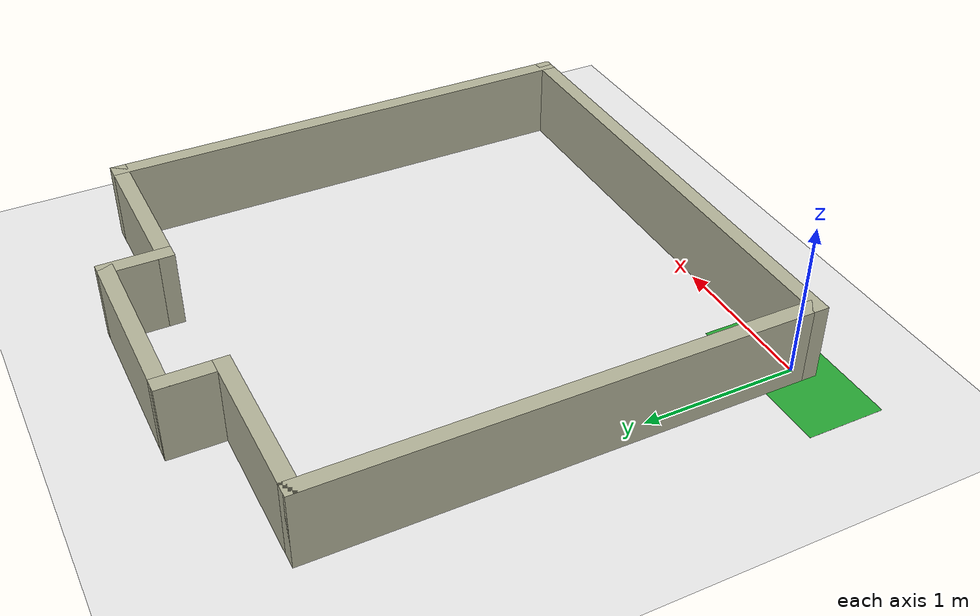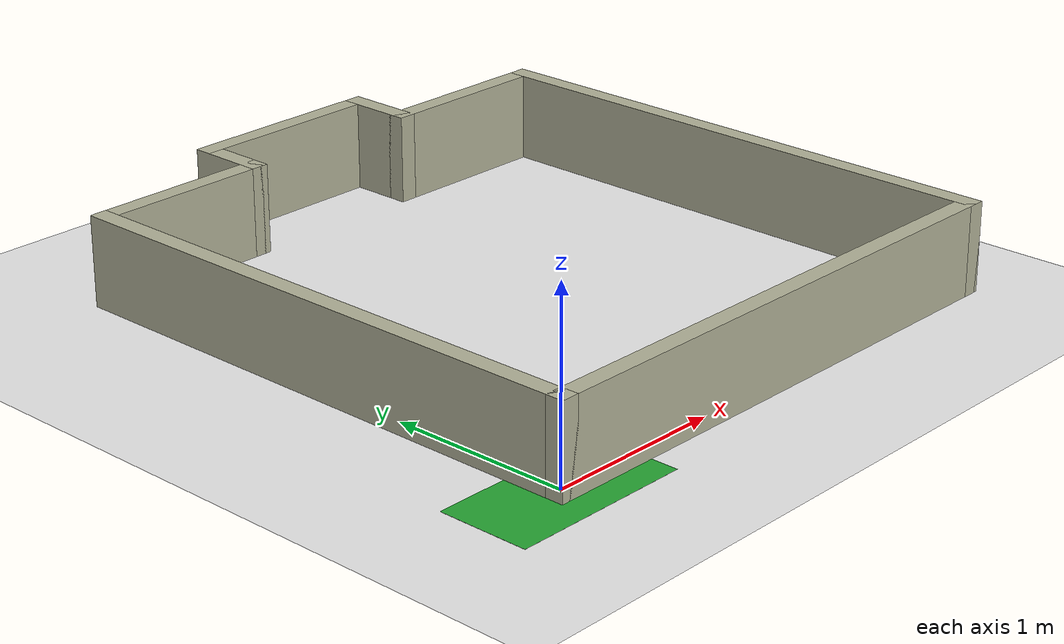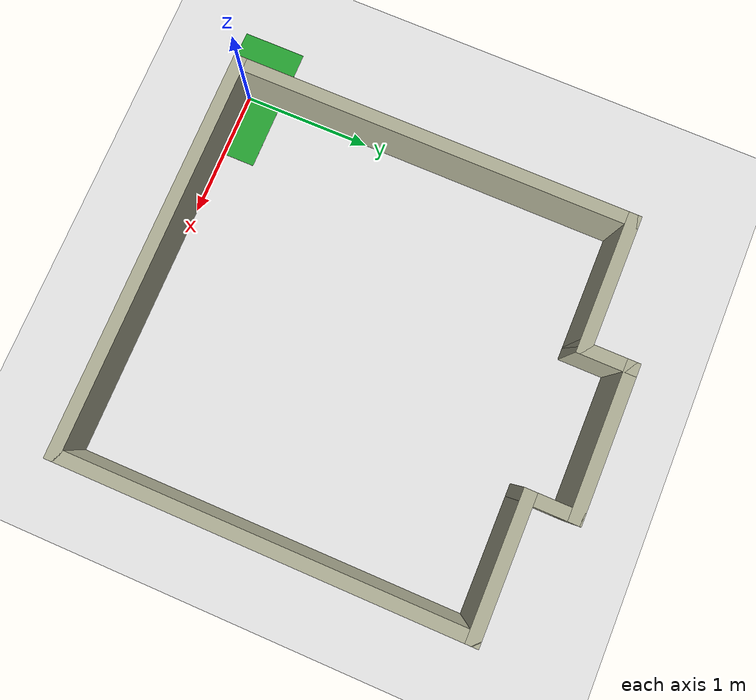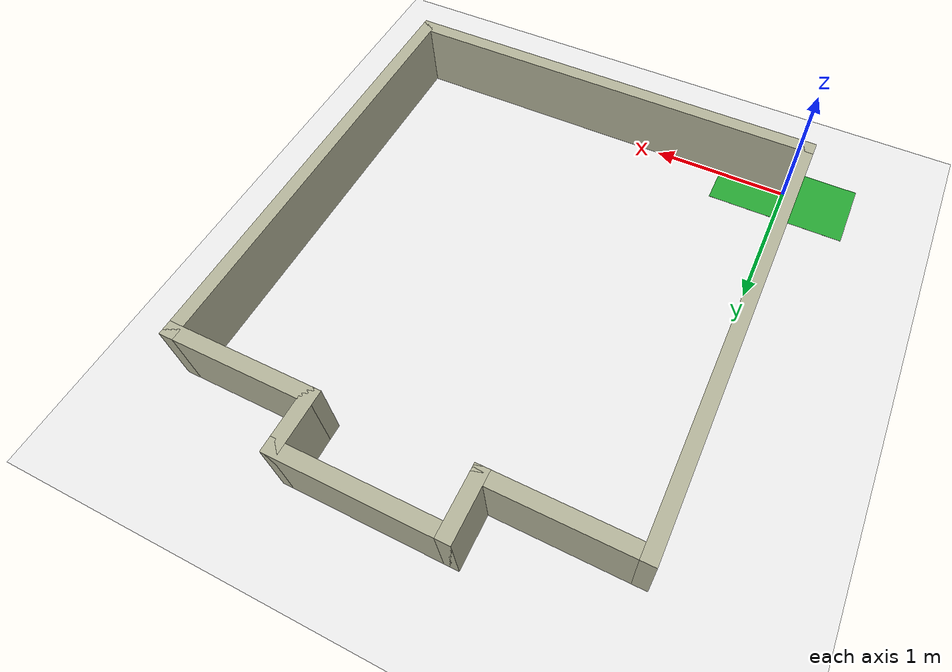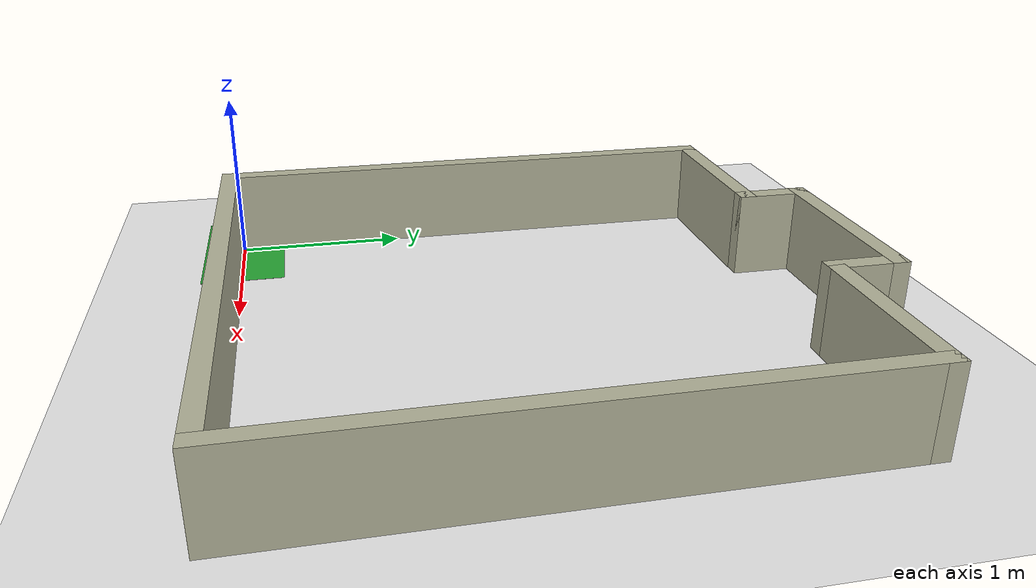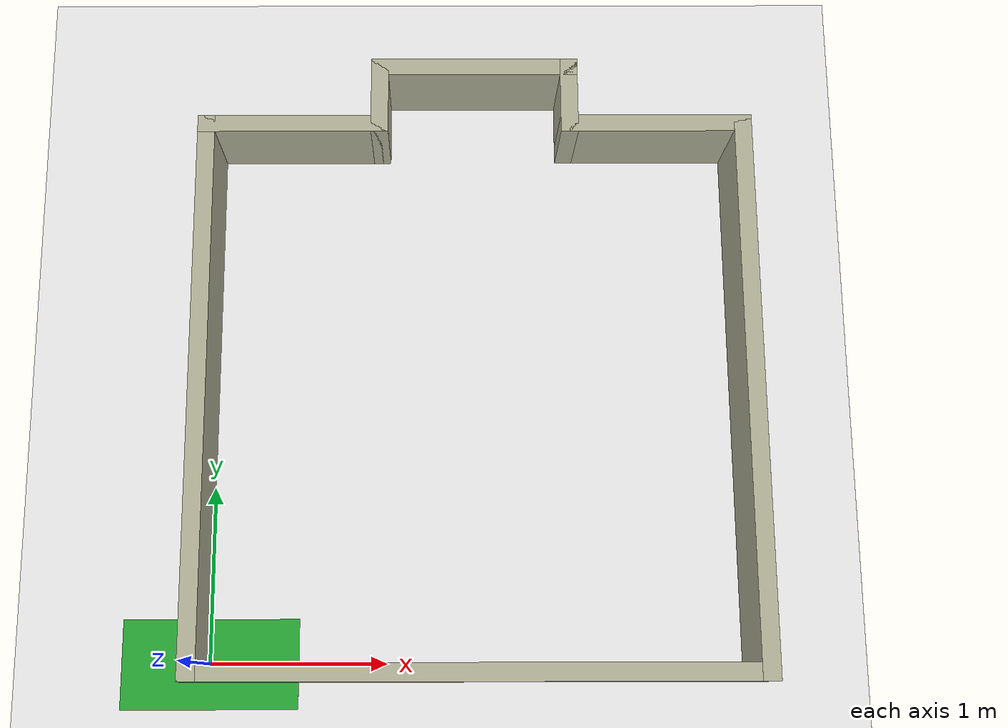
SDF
<sdf version="1.6">
 <world name="default">
  <model name="ground_plane">
   <static>1</static>
   <link name="link">
    <collision name="collision">
     <geometry><plane><normal>0 0 1</normal><size>3 3</size></plane></geometry>
     <surface><friction><ode><mu>1</mu><mu2>1</mu2></ode></friction></surface>
    </collision>
    <visual name="visual">
     <cast_shadows>0</cast_shadows>
     <geometry><plane><normal>0 0 1</normal><size>3 3</size></plane></geometry>
     <material>
      <script><uri>file://media/materials/scripts/gazebo.material</uri><name>Gazebo/White</name></script>
     </material>
    </visual>
   </link>
  </model>
  <model name="ground_plane_trash">
   <static>1</static>
   <link name="link">
    <collision name="collision">
     <geometry><plane><normal>0 0 1</normal><size>1 0.5</size></plane></geometry>
     <surface><friction><ode><mu>1</mu><mu2>1</mu2></ode></friction></surface>
    </collision>
    <visual name="visual">
     <cast_shadows>0</cast_shadows>
     <geometry><plane><normal>0 0 1</normal><size>1 0.5</size></plane></geometry>
     <material>
      <script><uri>file://media/materials/scripts/gazebo.material</uri><name>Gazebo/Green</name></script>
     </material>
    </visual>
   </link>
  </model>
  <light name="sun" type="directional">
   <cast_shadows>0</cast_shadows>
   <pose>0 0 10 0 -0 0</pose>
   <diffuse>0.8 0.8 0.8 1</diffuse>
   <specular>0.1 0.1 0.1 1</specular>
   <attenuation>
    <range>1000</range>
    <constant>0.9</constant>
    <linear>0.01</linear>
    <quadratic>0.001</quadratic>
   </attenuation>
   <direction>-0.5 0.5 -1</direction>
  </light>
  <gravity>0 0 -9.8</gravity>
  <magnetic_field>6e-06 2.3e-05 -4.2e-05</magnetic_field>
  <atmosphere type="adiabatic"/>
  <physics name="default_physics" default="0" type="ode">
   <max_step_size>0.001</max_step_size>
   <real_time_factor>1</real_time_factor>
   <real_time_update_rate>1000</real_time_update_rate>
  </physics>
  <scene><ambient>0.4 0.4 0.4 1</ambient><background>0.7 0.7 0.7 1</background><shadows>0</shadows></scene>
  <spherical_coordinates>
   <surface_model>EARTH_WGS84</surface_model>
   <latitude_deg>0</latitude_deg>
   <longitude_deg>0</longitude_deg>
   <elevation>0</elevation>
   <heading_deg>0</heading_deg>
  </spherical_coordinates>
  <model name="ASAP_ROOM">
   <pose>1.5 1.675 0 0 -0 0</pose>
   <link name="Wall_10">
    <collision name="Wall_10_Collision">
     <geometry><box><size>3.2 0.1 0.5</size></box></geometry>
     <pose>0 0 0.25 0 -0 0</pose>
    </collision>
    <visual name="Wall_10_Visual">
     <pose>0 0 0.25 0 -0 0</pose>
     <geometry><box><size>3.2 0.1 0.5</size></box></geometry>
     <material>
      <script><uri>file://media/materials/scripts/gazebo.material</uri><name>Gazebo/Residential</name></script>
      <ambient>1 1 1 1</ambient>
     </material>
    </visual>
    <pose>1.55 -0.175 0 0 -0 1.5708</pose>
   </link>
   <link name="Wall_12">
    <collision name="Wall_12_Collision">
     <geometry><box><size>1.1 0.1 0.5</size></box></geometry>
     <pose>0 0 0.25 0 -0 0</pose>
    </collision>
    <visual name="Wall_12_Visual">
     <pose>0 0 0.25 0 -0 0</pose>
     <geometry><box><size>1.1 0.1 0.5</size></box></geometry>
     <material>
      <script><uri>file://media/materials/scripts/gazebo.material</uri><name>Gazebo/Residential</name></script>
      <ambient>1 1 1 1</ambient>
     </material>
    </visual>
    <pose>-1.05 1.375 0 0 -0 0</pose>
   </link>
   <link name="Wall_14">
    <collision name="Wall_14_Collision">
     <geometry><box><size>0.45 0.1 0.5</size></box></geometry>
     <pose>0 0 0.25 0 -0 0</pose>
    </collision>
    <visual name="Wall_14_Visual">
     <pose>0 0 0.25 0 -0 0</pose>
     <geometry><box><size>0.45 0.1 0.5</size></box></geometry>
     <material>
      <script><uri>file://media/materials/scripts/gazebo.material</uri><name>Gazebo/Residential</name></script>
      <ambient>1 1 1 1</ambient>
     </material>
    </visual>
    <pose>-0.55 1.55 0 0 -0 1.5708</pose>
   </link>
   <link name="Wall_16">
    <collision name="Wall_16_Collision">
     <geometry><box><size>1.1 0.1 0.5</size></box></geometry>
     <pose>0 0 0.25 0 -0 0</pose>
    </collision>
    <visual name="Wall_16_Visual">
     <pose>0 0 0.25 0 -0 0</pose>
     <geometry><box><size>1.1 0.1 0.5</size></box></geometry>
     <material>
      <script><uri>file://media/materials/scripts/gazebo.material</uri><name>Gazebo/Residential</name></script>
      <ambient>1 1 1 1</ambient>
     </material>
    </visual>
    <pose>1.05 1.375 0 0 -0 3.14159</pose>
   </link>
   <link name="Wall_19">
    <collision name="Wall_19_Collision">
     <geometry><box><size>0.45 0.1 0.5</size></box></geometry>
     <pose>0 0 0.25 0 -0 0</pose>
    </collision>
    <visual name="Wall_19_Visual">
     <pose>0 0 0.25 0 -0 0</pose>
     <geometry><box><size>0.45 0.1 0.5</size></box></geometry>
     <material>
      <script><uri>file://media/materials/scripts/gazebo.material</uri><name>Gazebo/Residential</name></script>
      <ambient>1 1 1 1</ambient>
     </material>
    </visual>
    <pose>0.55 1.55 0 0 -0 1.5708</pose>
   </link>
   <link name="Wall_22">
    <collision name="Wall_22_Collision">
     <geometry><box><size>1.2 0.1 0.5</size></box></geometry>
     <pose>0 0 0.25 0 -0 0</pose>
    </collision>
    <visual name="Wall_22_Visual">
     <pose>0 0 0.25 0 -0 0</pose>
     <geometry><box><size>1.2 0.1 0.5</size></box></geometry>
     <material>
      <script><uri>file://media/materials/scripts/gazebo.material</uri><name>Gazebo/Residential</name></script>
      <ambient>1 1 1 1</ambient>
     </material>
    </visual>
    <pose>0 1.725 0 0 -0 0</pose>
   </link>
   <link name="Wall_5">
    <collision name="Wall_5_Collision">
     <geometry><box><size>3.2 0.1 0.5</size></box></geometry>
     <pose>0 0 0.25 0 -0 0</pose>
    </collision>
    <visual name="Wall_5_Visual">
     <pose>0 0 0.25 0 -0 0</pose>
     <geometry><box><size>3.2 0.1 0.5</size></box></geometry>
     <material>
      <script><uri>file://media/materials/scripts/gazebo.material</uri><name>Gazebo/Residential</name></script>
      <ambient>1 1 1 1</ambient>
     </material>
    </visual>
    <pose>0 -1.725 0 0 -0 0</pose>
   </link>
   <link name="Wall_7">
    <collision name="Wall_7_Collision">
     <geometry><box><size>3.2 0.1 0.5</size></box></geometry>
     <pose>0 0 0.25 0 -0 0</pose>
    </collision>
    <visual name="Wall_7_Visual">
     <pose>0 0 0.25 0 -0 0</pose>
     <geometry><box><size>3.2 0.1 0.5</size></box></geometry>
     <material>
      <script><uri>file://media/materials/scripts/gazebo.material</uri><name>Gazebo/Residential</name></script>
      <ambient>1 1 1 1</ambient>
     </material>
    </visual>
    <pose>-1.55 -0.175 0 0 -0 1.5708</pose>
   </link>
   <static>1</static>
  </model>
 </world>
</sdf>
